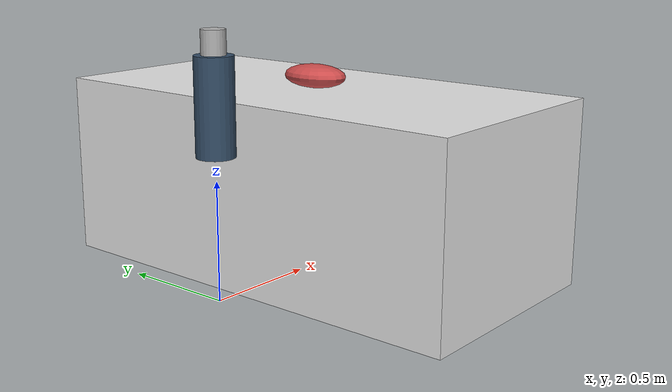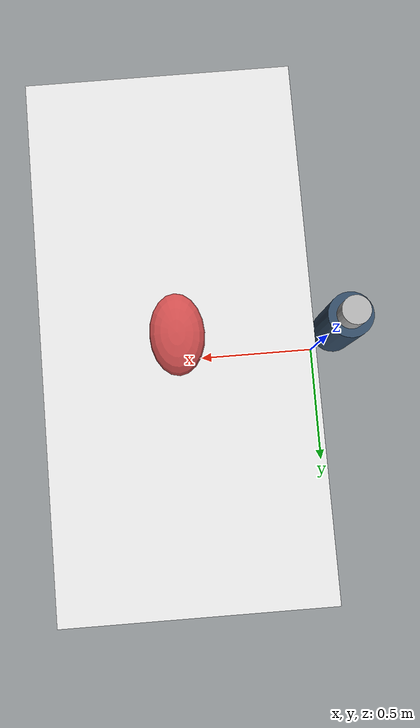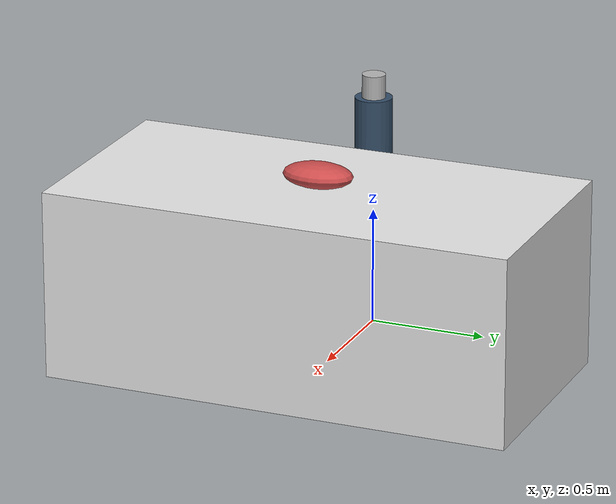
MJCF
<mujoco model="surgical_7dof_robot">
  <compiler angle="radian" coordinate="local"/>
  <option gravity="0 0 -9.81" timestep="0.001"/>
  <worldbody>
    <geom name="surgical_table" type="box" size="0.5 1.0 0.4" pos="0.6 0 0.4" rgba="0.9 0.9 0.9 1"/>
    <!-- Organ soft tissue mock geom -->
    <geom name="tissue" type="ellipsoid" size="0.1 0.15 0.05" pos="0.6 0 0.85" rgba="0.8 0.3 0.3 1" mass="0.5"/>
    <body name="surgical_base" pos="0 0 0.8">
      <geom name="base_mast" type="cylinder" size="0.08 0.2" rgba="0.2 0.3 0.4 1" mass="8.0"/>
      <!-- Link 1 -->
      <body name="link1" pos="0 0 0.2">
        <joint name="j1_yaw" type="hinge" axis="0 0 1"/>
        <geom name="l1" type="cylinder" size="0.05 0.1" rgba="0.7 0.7 0.7 1" mass="2.0"/>
      </body>
    </body>
  </worldbody>
</mujoco>
